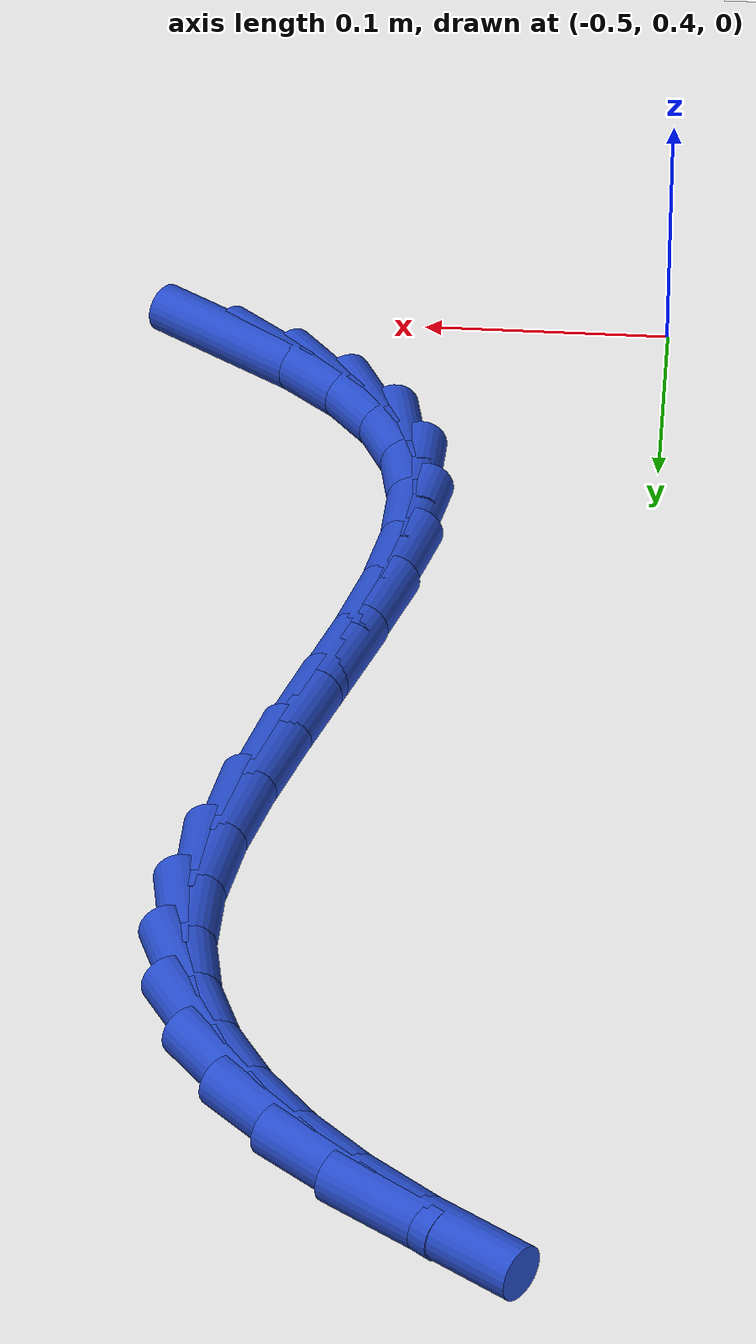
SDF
<sdf version="1.6">
 <world name="default">
  <model name="ground_plane">
   <static>1</static>
   <link name="link">
    <collision name="collision">
     <geometry><plane><normal>0 0 1</normal><size>100 100</size></plane></geometry>
     <surface><friction><ode><mu>100</mu><mu2>50</mu2></ode></friction></surface>
    </collision>
    <visual name="visual">
     <cast_shadows>0</cast_shadows>
     <geometry><plane><normal>0 0 1</normal><size>100 100</size></plane></geometry>
     <material>
      <script><uri>file://media/materials/scripts/gazebo.material</uri><name>Gazebo/WhiteGlow</name></script>
     </material>
    </visual>
   </link>
  </model>
  <model name="line">
   <link name="link_18">
    <pose>-0.32523661736156423 0.431174222369231 0.01 0 1.57 -0.6151585534215233</pose>
    <collision name="collision">
     <geometry><cylinder><radius>0.01</radius><length>0.08</length></cylinder></geometry>
    </collision>
    <visual name="visual">
     <material>
      <script><name>Gazebo/Blue</name><uri>file://media/materials/scripts/gazebo.material</uri></script>
     </material>
     <geometry><cylinder><radius>0.01</radius><length>0.08</length></cylinder></geometry>
    </visual>
   </link>
   <link name="link_19">
    <pose>-0.35052558084465696 0.4490440401777591 0.01 0 1.57 -0.7370516372920425</pose>
    <collision name="collision">
     <geometry><cylinder><radius>0.01</radius><length>0.08</length></cylinder></geometry>
    </collision>
    <visual name="visual">
     <material>
      <script><name>Gazebo/Blue</name><uri>file://media/materials/scripts/gazebo.material</uri></script>
     </material>
     <geometry><cylinder><radius>0.01</radius><length>0.08</length></cylinder></geometry>
    </visual>
   </link>
   <link name="link_20">
    <pose>-0.3719014187861311 0.468446835373572 0.01 0 1.57 -0.9075124071370088</pose>
    <collision name="collision">
     <geometry><cylinder><radius>0.01</radius><length>0.08</length></cylinder></geometry>
    </collision>
    <visual name="visual">
     <material>
      <script><name>Gazebo/Blue</name><uri>file://media/materials/scripts/gazebo.material</uri></script>
     </material>
     <geometry><cylinder><radius>0.01</radius><length>0.08</length></cylinder></geometry>
    </visual>
   </link>
   <link name="link_21">
    <pose>-0.3885614367728081 0.4897681015567351 0.01 0 1.57 -1.1301311127968117</pose>
    <collision name="collision">
     <geometry><cylinder><radius>0.01</radius><length>0.08</length></cylinder></geometry>
    </collision>
    <visual name="visual">
     <material>
      <script><name>Gazebo/Blue</name><uri>file://media/materials/scripts/gazebo.material</uri></script>
     </material>
     <geometry><cylinder><radius>0.01</radius><length>0.08</length></cylinder></geometry>
    </visual>
   </link>
   <link name="link_22">
    <pose>-0.3997029403915102 0.5133933323273143 0.01 0 1.57 -1.3850555490013627</pose>
    <collision name="collision">
     <geometry><cylinder><radius>0.01</radius><length>0.08</length></cylinder></geometry>
    </collision>
    <visual name="visual">
     <material>
      <script><name>Gazebo/Blue</name><uri>file://media/materials/scripts/gazebo.material</uri></script>
     </material>
     <geometry><cylinder><radius>0.01</radius><length>0.08</length></cylinder></geometry>
    </visual>
   </link>
   <link name="link_23">
    <pose>-0.4046382467985747 0.5396580011457781 0.01 0 1.57 1.5450411678632596</pose>
    <collision name="collision">
     <geometry><cylinder><radius>0.01</radius><length>0.08</length></cylinder></geometry>
    </collision>
    <visual name="visual">
     <material>
      <script><name>Gazebo/Blue</name><uri>file://media/materials/scripts/gazebo.material</uri></script>
     </material>
     <geometry><cylinder><radius>0.01</radius><length>0.08</length></cylinder></geometry>
    </visual>
   </link>
   <link name="link_24">
    <pose>-0.4038986675206872 0.5683674237777615 0.01 0 1.57 1.404294627243829</pose>
    <collision name="collision">
     <geometry><cylinder><radius>0.01</radius><length>0.08</length></cylinder></geometry>
    </collision>
    <visual name="visual">
     <material>
      <script><name>Gazebo/Blue</name><uri>file://media/materials/scripts/gazebo.material</uri></script>
     </material>
     <geometry><cylinder><radius>0.01</radius><length>0.08</length></cylinder></geometry>
    </visual>
   </link>
   <link name="link_25">
    <pose>-0.3987493246039748 0.5990077715343443 0.01 0 1.57 1.317886489785513</pose>
    <collision name="collision">
     <geometry><cylinder><radius>0.01</radius><length>0.08</length></cylinder></geometry>
    </collision>
    <visual name="visual">
     <material>
      <script><name>Gazebo/Blue</name><uri>file://media/materials/scripts/gazebo.material</uri></script>
     </material>
     <geometry><cylinder><radius>0.01</radius><length>0.08</length></cylinder></geometry>
    </visual>
   </link>
   <link name="link_26">
    <pose>-0.39046540892263387 0.6310608366525033 0.01 0 1.57 1.2721426269081333</pose>
    <collision name="collision">
     <geometry><cylinder><radius>0.01</radius><length>0.08</length></cylinder></geometry>
    </collision>
    <visual name="visual">
     <material>
      <script><name>Gazebo/Blue</name><uri>file://media/materials/scripts/gazebo.material</uri></script>
     </material>
     <geometry><cylinder><radius>0.01</radius><length>0.08</length></cylinder></geometry>
    </visual>
   </link>
   <link name="link_27">
    <pose>-0.3803221113508607 0.6640084113692152 0.01 0 1.57 1.2593563363764915</pose>
    <collision name="collision">
     <geometry><cylinder><radius>0.01</radius><length>0.08</length></cylinder></geometry>
    </collision>
    <visual name="visual">
     <material>
      <script><name>Gazebo/Blue</name><uri>file://media/materials/scripts/gazebo.material</uri></script>
     </material>
     <geometry><cylinder><radius>0.01</radius><length>0.08</length></cylinder></geometry>
    </visual>
   </link>
   <link name="link_28">
    <pose>-0.3695946227628511 0.6973322879214572 0.01 0 1.57 1.277076730391057</pose>
    <collision name="collision">
     <geometry><cylinder><radius>0.01</radius><length>0.08</length></cylinder></geometry>
    </collision>
    <visual name="visual">
     <material>
      <script><name>Gazebo/Blue</name><uri>file://media/materials/scripts/gazebo.material</uri></script>
     </material>
     <geometry><cylinder><radius>0.01</radius><length>0.08</length></cylinder></geometry>
    </visual>
   </link>
   <link name="link_29">
    <pose>-0.3595581340328015 0.7305142585462057 0.01 0 1.57 1.3275596198123802</pose>
    <collision name="collision">
     <geometry><cylinder><radius>0.01</radius><length>0.08</length></cylinder></geometry>
    </collision>
    <visual name="visual">
     <material>
      <script><name>Gazebo/Blue</name><uri>file://media/materials/scripts/gazebo.material</uri></script>
     </material>
     <geometry><cylinder><radius>0.01</radius><length>0.08</length></cylinder></geometry>
    </visual>
   </link>
   <link name="link_30">
    <pose>-0.35148783603490813 0.7630361154804376 0.01 0 1.57 1.4179340109638274</pose>
    <collision name="collision">
     <geometry><cylinder><radius>0.01</radius><length>0.08</length></cylinder></geometry>
    </collision>
    <visual name="visual">
     <material>
      <script><name>Gazebo/Blue</name><uri>file://media/materials/scripts/gazebo.material</uri></script>
     </material>
     <geometry><cylinder><radius>0.01</radius><length>0.08</length></cylinder></geometry>
    </visual>
   </link>
   <link name="link_31">
    <pose>-0.3466589196433672 0.7943796509611301 0.01 0 1.57 1.5601558338305195</pose>
    <collision name="collision">
     <geometry><cylinder><radius>0.01</radius><length>0.08</length></cylinder></geometry>
    </collision>
    <visual name="visual">
     <material>
      <script><name>Gazebo/Blue</name><uri>file://media/materials/scripts/gazebo.material</uri></script>
     </material>
     <geometry><cylinder><radius>0.01</radius><length>0.08</length></cylinder></geometry>
    </visual>
   </link>
   <link name="link_32">
    <pose>-0.34634343589949235 0.8240278861016566 0.01 0 1.57 -1.3934364828090906</pose>
    <collision name="collision">
     <geometry><cylinder><radius>0.01</radius><length>0.08</length></cylinder></geometry>
    </collision>
    <visual name="visual">
     <material>
      <script><name>Gazebo/Blue</name><uri>file://media/materials/scripts/gazebo.material</uri></script>
     </material>
     <geometry><cylinder><radius>0.01</radius><length>0.08</length></cylinder></geometry>
    </visual>
   </link>
   <link name="link_33">
    <pose>-0.3512973506692962 0.8516658288454583 0.01 0 1.57 -1.2037991851993026</pose>
    <collision name="collision">
     <geometry><cylinder><radius>0.01</radius><length>0.08</length></cylinder></geometry>
    </collision>
    <visual name="visual">
     <material>
      <script><name>Gazebo/Blue</name><uri>file://media/materials/scripts/gazebo.material</uri></script>
     </material>
     <geometry><cylinder><radius>0.01</radius><length>0.08</length></cylinder></geometry>
    </visual>
   </link>
   <link name="link_34">
    <pose>-0.36119116542394997 0.877403319165179 0.01 0 1.57 -1.031396989596992</pose>
    <collision name="collision">
     <geometry><cylinder><radius>0.01</radius><length>0.08</length></cylinder></geometry>
    </collision>
    <visual name="visual">
     <material>
      <script><name>Gazebo/Blue</name><uri>file://media/materials/scripts/gazebo.material</uri></script>
     </material>
     <geometry><cylinder><radius>0.01</radius><length>0.08</length></cylinder></geometry>
    </visual>
   </link>
   <link name="link_35">
    <pose>-0.375558222609207 0.9014038787086686 0.01 0 1.57 -0.8844219875120721</pose>
    <collision name="collision">
     <geometry><cylinder><radius>0.01</radius><length>0.08</length></cylinder></geometry>
    </collision>
    <visual name="visual">
     <material>
      <script><name>Gazebo/Blue</name><uri>file://media/materials/scripts/gazebo.material</uri></script>
     </material>
     <geometry><cylinder><radius>0.01</radius><length>0.08</length></cylinder></geometry>
    </visual>
   </link>
   <link name="link_36">
    <pose>-0.3939318646708209 0.9238310291237766 0.01 0 1.57 -0.7645232768600436</pose>
    <collision name="collision">
     <geometry><cylinder><radius>0.01</radius><length>0.08</length></cylinder></geometry>
    </collision>
    <visual name="visual">
     <material>
      <script><name>Gazebo/Blue</name><uri>file://media/materials/scripts/gazebo.material</uri></script>
     </material>
     <geometry><cylinder><radius>0.01</radius><length>0.08</length></cylinder></geometry>
    </visual>
   </link>
   <link name="link_37">
    <pose>-0.4158454340545449 0.9448482920583526 0.01 0 1.57 -0.6693842491865951</pose>
    <collision name="collision">
     <geometry><cylinder><radius>0.01</radius><length>0.08</length></cylinder></geometry>
    </collision>
    <visual name="visual">
     <material>
      <script><name>Gazebo/Blue</name><uri>file://media/materials/scripts/gazebo.material</uri></script>
     </material>
     <geometry><cylinder><radius>0.01</radius><length>0.08</length></cylinder></geometry>
    </visual>
   </link>
   <link name="link_38">
    <pose>-0.4408322732061327 0.9646191891602467 0.01 0 1.57 -0.5953034214540748</pose>
    <collision name="collision">
     <geometry><cylinder><radius>0.01</radius><length>0.08</length></cylinder></geometry>
    </collision>
    <visual name="visual">
     <material>
      <script><name>Gazebo/Blue</name><uri>file://media/materials/scripts/gazebo.material</uri></script>
     </material>
     <geometry><cylinder><radius>0.01</radius><length>0.08</length></cylinder></geometry>
    </visual>
   </link>
  </model>
 </world>
</sdf>
